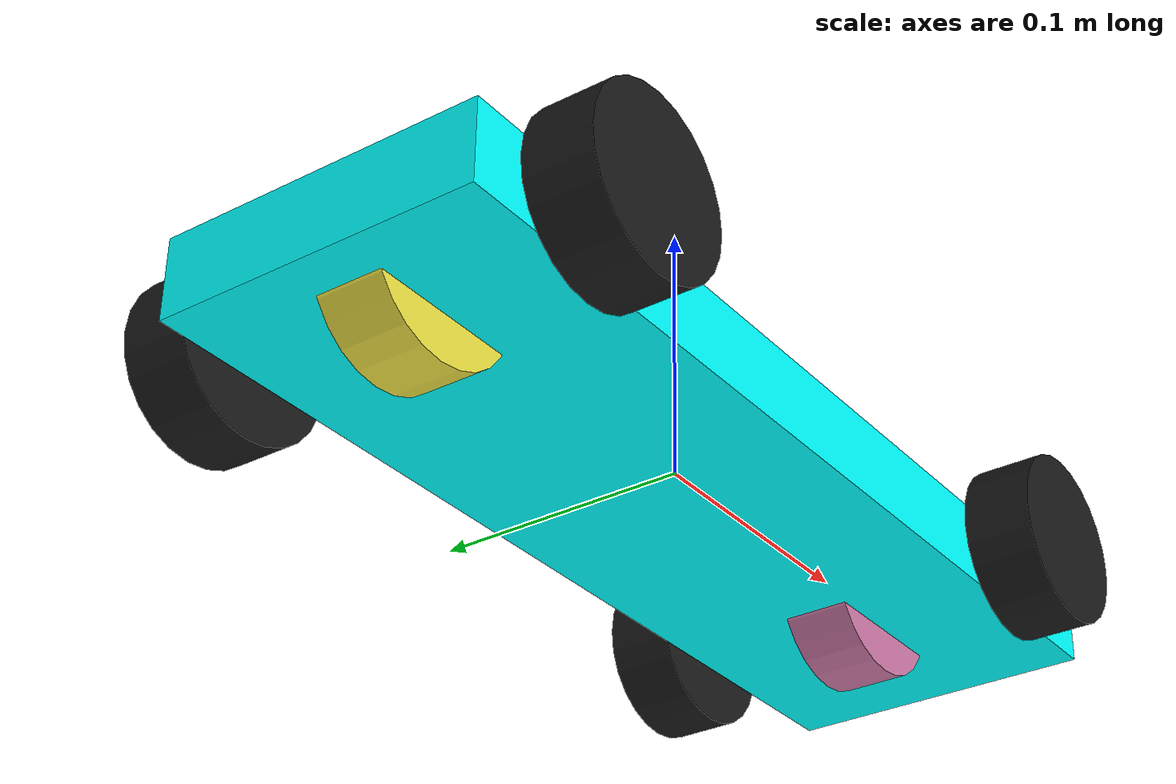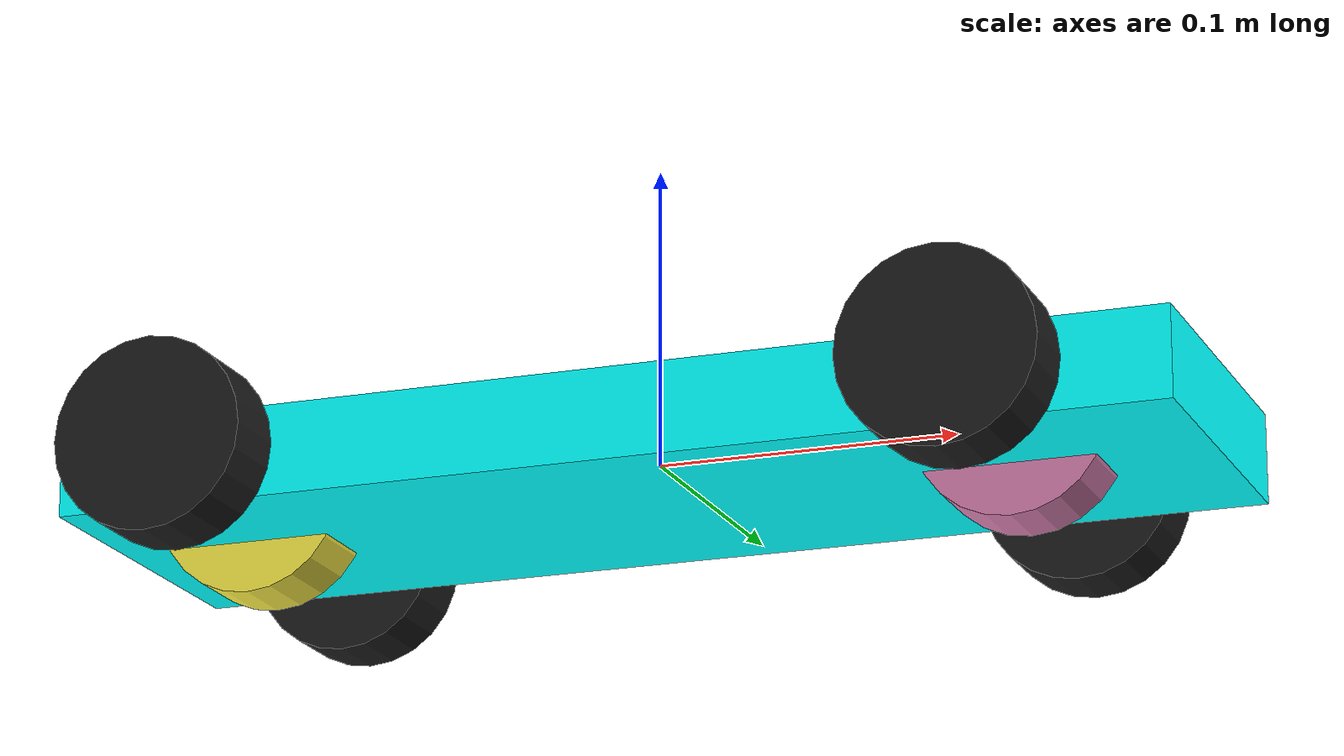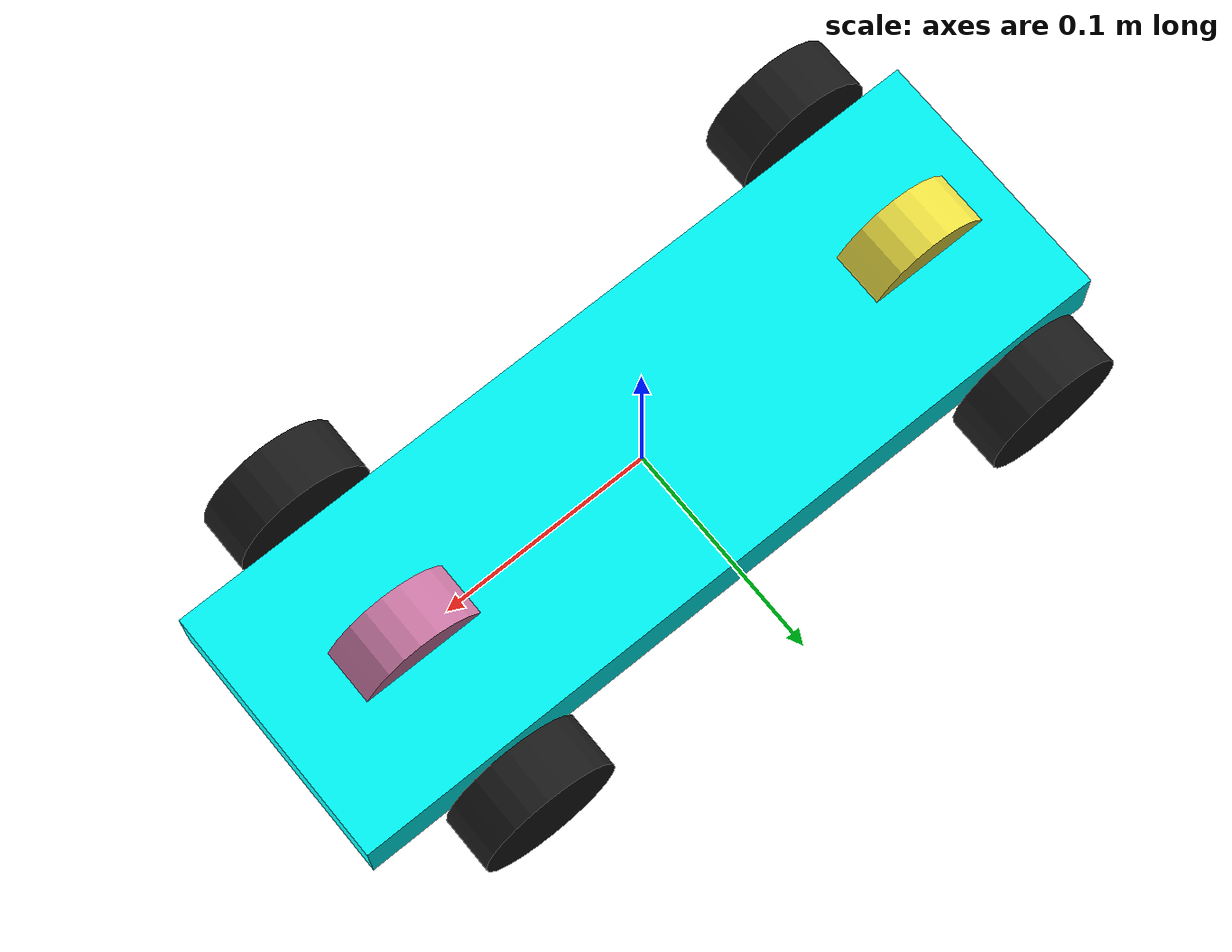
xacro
<?xml version="1.0"?>
<!-- 4 Wheel Robot with front steering and rear drive -->
<robot xmlns:xacro="http://www.ros.org/wiki/xacro" name="carlikebot_robot">

  <xacro:include filename="$(find robot_controller2_ackm)/urdf/tt02.xacro" />

  <xacro:include
    filename="$(find robot_controller2_ackm)/ros2_control/carlikebot.ros2_control.xacro" />

  <xacro:tt02_body />
  <xacro:carlikebot_ros2_control name="CarlikeBot" />

</robot>

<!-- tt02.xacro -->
<!-- 4 wheel car with front steering and rear drive based on Tamiya TT02 -->
<robot xmlns:xacro="http://www.ros.org/wiki/xacro">
  <xacro:macro name="tt02_body">
    <!--==================================================
      ===== Define robot constants                 =====
      ==================================================-->

    <!-- Size in meter -->
    <xacro:property name="base_width" value="0.12" />
    <xacro:property name="base_length" value="0.37" />
    <xacro:property name="base_height" value="0.03" />

    <xacro:property name="wheel_radius" value="0.032" />
    <xacro:property name="wheel_width" value="0.025" />
    <xacro:property name="wheel_ygap" value="0.018" />
    <xacro:property name="wheel_zoff" value="0.00" />
    <xacro:property name="wheel_rear_xoff" value="0.14" />
    <xacro:property name="wheel_front_xoff" value="0.12" />

    <!-- Mass in kg -->
    <xacro:property name="base_mass" value="1.300" />
    <xacro:property name="wheel_mass" value="0.034" />

    <!--==================================================
      ===== Define inertial property macros        =====
      ==================================================-->

    <xacro:macro name="box_inertia" params="m w h d">
      <inertial>
        <origin xyz="0 0 0" rpy="${pi/2} 0 ${pi/2}" />
        <mass value="${m}" />
        <inertia ixx="${(m/12) * (h*h + d*d)}" ixy="0.0" ixz="0.0" iyy="${(m/12) * (w*w + d*d)}"
          iyz="0.0" izz="${(m/12) * (w*w + h*h)}" />
      </inertial>
    </xacro:macro>

    <xacro:macro name="cylinder_inertia" params="m r h">
      <inertial>
        <origin xyz="0 0 0" rpy="${pi/2} 0 0" />
        <mass value="${m}" />
        <inertia ixx="${(m/12) * (3*r*r + h*h)}" ixy="0" ixz="0" iyy="${(m/12) * (3*r*r + h*h)}"
          iyz="0" izz="${(m/2) * (r*r)}" />
      </inertial>
    </xacro:macro>

    <xacro:macro name="sphere_inertia" params="m r">
      <inertial>
        <mass value="${m}" />
        <inertia ixx="${(2/5) * m * (r*r)}" ixy="0.0" ixz="0.0" iyy="${(2/5) * m * (r*r)}" iyz="0.0"
          izz="${(2/5) * m * (r*r)}" />
      </inertial>
    </xacro:macro>

    <!--==================================================
      ===== Define links and joints                =====
      ==================================================-->

    <link name="base_link" />

    <!-- Robot Body -->
    <link name="base_body">
      <visual>
        <geometry>
          <box size="${base_length} ${base_width} ${base_height}" />
        </geometry>
        <material name="Cyan">
          <color rgba="0 1.0 1.0 1.0" />
        </material>
      </visual>

      <collision>
        <geometry>
          <box size="${base_length} ${base_width} ${base_height}" />
        </geometry>
      </collision>

      <xacro:box_inertia m="${base_mass}" w="${base_width}" d="${base_length}" h="${base_height}" />
    </link>

    <joint name="base_body_joint" type="fixed">
      <parent link="base_link" />
      <child link="base_body" />
      <origin xyz="0.0 0.0 0.0" rpy="0 0 0" />
    </joint>

    <!-- Robot Footprint -->
    <link name="base_footprint" />

    <joint name="base_joint" type="fixed">
      <parent link="base_link" />
      <child link="base_footprint" />
      <origin xyz="0.0 0.0 ${-(wheel_radius+wheel_zoff)}" rpy="0 0 0" />
    </joint>

    <!-- Wheels -->

    <!-- Rear Wheels -->
    <link name="virtual_rear_wheel">
      <visual>
        <origin xyz="0 0 0" rpy="${pi/2} 0 0" />
        <geometry>
          <cylinder radius="${wheel_radius}" length="${wheel_width}" />
        </geometry>
        <material name="invisible" />
      </visual>
    </link>

    <joint name="virtual_rear_wheel_joint" type="continuous">
      <parent link="base_body" />
      <child link="virtual_rear_wheel" />
      <origin xyz="${-1*wheel_rear_xoff} 0 ${-wheel_zoff}"
        rpy="0 0 0" />
      <axis xyz="0 1 0" />
      <limit effort="100.0" velocity="100.0" />
      <dynamics damping="0.2" />
    </joint>

    <xacro:macro name="rear_wheel" params="prefix y_reflect">
      <link name="${prefix}_link">
        <visual>
          <origin xyz="0 0 0" rpy="${pi/2} 0 0" />
          <geometry>
            <cylinder radius="${wheel_radius}" length="${wheel_width}" />
          </geometry>
          <material name="Dark gray">
            <color rgba="0.1 0.1 0.1 1.0" />
          </material>
        </visual>

        <collision>
          <origin xyz="0 0 0" rpy="${pi/2} 0 0" />
          <geometry>
            <cylinder radius="${wheel_radius}" length="${wheel_width}" />
          </geometry>
        </collision>

        <xacro:cylinder_inertia m="${wheel_mass}" r="${wheel_radius}" h="${wheel_width}" />
      </link>

      <joint name="${prefix}_joint" type="continuous">
        <parent link="base_body" />
        <child link="${prefix}_link" />
        <origin xyz="${-1*wheel_rear_xoff} ${y_reflect*(base_width/2+wheel_ygap)} ${-wheel_zoff}"
          rpy="0 0 0" />
        <axis xyz="0 1 0" />
        <limit effort="100.0" velocity="100.0" />
        <dynamics damping="0.2" />
        <mimic joint="${prefix}virtual_rear_wheel_joint" multiplier="1.0" offset="0.0" />
      </joint>

      <gazebo reference="${prefix}_joint">
        <axis>
          <limit>
            <effort>0.2</effort>
          </limit>
        </axis>
      </gazebo>

    </xacro:macro>

    <xacro:rear_wheel prefix="drivewheel_rear_left" y_reflect="1" />
    <xacro:rear_wheel prefix="drivewheel_rear_right" y_reflect="-1" />

    <!-- Front wheel -->
    <link name="virtual_front_wheel">
      <visual>
        <origin xyz="0 0 0" rpy="${pi/2} 0 0" />
        <geometry>
          <cylinder radius="${wheel_radius}" length="${wheel_width}" />
        </geometry>
        <material name="invisible" />
      </visual>
    </link>

    <joint name="virtual_front_wheel_joint" type="revolute">
      <parent link="base_body" />
      <child link="virtual_front_wheel" />
      <origin xyz="${1*wheel_front_xoff} 0 ${-wheel_zoff}"
        rpy="0 0 0" />
      <axis xyz="0 0 1" />
      <limit lower="-0.4" upper="0.4" effort="100.0" velocity="10.0" />
      <dynamics damping="0.2" />
    </joint>

    <xacro:macro name="front_wheel" params="prefix y_reflect">
      <link name="${prefix}_link">
        <visual>
          <origin xyz="0 0 0" rpy="${pi/2} 0 0" />
          <geometry>
            <cylinder radius="${wheel_radius}" length="${wheel_width}" />
          </geometry>
          <material name="Dark gray">
            <color rgba="0.1 0.1 0.1 1.0" />
          </material>
        </visual>

        <collision>
          <origin xyz="0 0 0" rpy="${pi/2} 0 0" />
          <geometry>
            <cylinder radius="${wheel_radius}" length="${wheel_width}" />
          </geometry>
        </collision>

        <xacro:cylinder_inertia m="${wheel_mass}" r="${wheel_radius}" h="${wheel_width}" />
      </link>

      <joint name="${prefix}_joint" type="revolute">
        <parent link="base_body" />
        <child link="${prefix}_link" />
        <origin xyz="${1*wheel_front_xoff} ${y_reflect*(base_width/2+wheel_ygap)} ${-wheel_zoff}"
          rpy="0 0 0" />
        <axis xyz="0 0 1" />
        <limit lower="-0.4" upper="0.4" effort="100.0" velocity="10.0" />
        <dynamics damping="0.2" />
        <mimic joint="virtual_front_wheel_joint" multiplier="1.0" offset="0.0" />
      </joint>

      <gazebo reference="${prefix}_joint">
        <axis>
          <limit>
            <effort>0.2</effort>
          </limit>
        </axis>
      </gazebo>

    </xacro:macro>

    <xacro:front_wheel prefix="drivewheel_front_left" y_reflect="1" />
    <xacro:front_wheel prefix="drivewheel_fronr_right" y_reflect="-1" />

    <!-- Import carlikebot ros2_control description -->

  </xacro:macro>

</robot>
